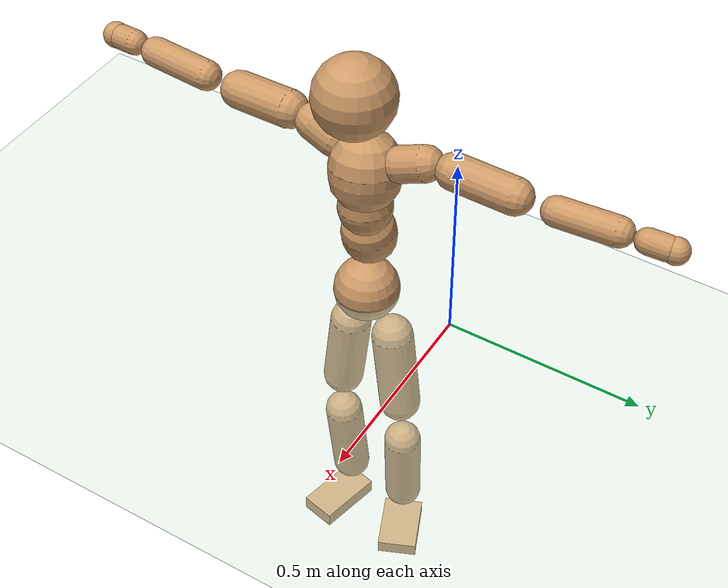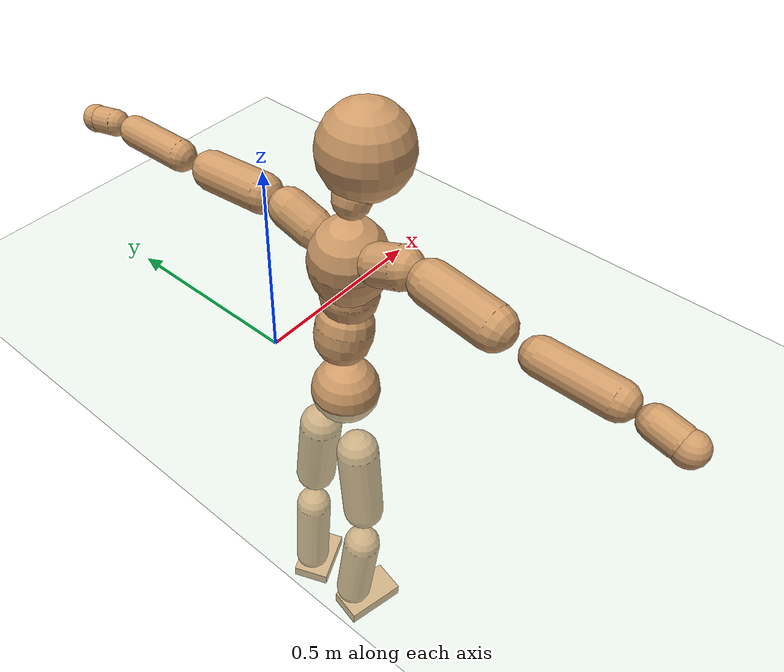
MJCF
<mujoco model="humanoid">
  <compiler coordinate="local" angle="radian"/>
  <default>
    <joint damping="0.0" armature="0.01" stiffness="0.0" limited="true"/>
    <geom conaffinity="1" condim="3" contype="7" margin="0.001" rgba="0.8 0.6 .4 1"/>
  </default>
  <asset>
    <texture type="skybox" builtin="gradient" rgb1=".4 .5 .6" rgb2="0 0 0" width="100" height="100"/>
    <texture builtin="flat" height="1278" mark="cross" markrgb="1 1 1" name="texgeom" random="0.01" rgb1="0.8 0.6 0.4" rgb2="0.8 0.6 0.4" type="cube" width="127"/>
    <texture builtin="checker" height="100" name="texplane" rgb1="0 0 0" rgb2="0.8 0.8 0.8" type="2d" width="100"/>
    <material name="MatPlane" reflectance="0.5" shininess="1" specular="1" texrepeat="60 60" texture="texplane"/>
    <material name="geom" texture="texgeom" texuniform="true"/>
  </asset>
  <worldbody>
    <light cutoff="100" diffuse="1 1 1" dir="-0 0 -1.3" directional="true" exponent="1" pos="0 0 1.3" specular=".1 .1 .1"/>
    <geom conaffinity="1" condim="3" name="floor" pos="0 0 0" rgba="0.8 0.9 0.8 1" size="100 100 .2" type="plane" material="MatPlane"/>
    <body name="Pelvis" pos="0.0005 -0.2372 0.0041">
      <freejoint name="Pelvis"/>
      <geom type="sphere" contype="1" conaffinity="1" density="500" size="0.0843" pos="0.0000 0.0000 0.0000" name="Pelvis"/>
      <body name="L_Hip" pos="-0.026 0.0517 -0.0807">
        <joint name="L_Hip_x" type="hinge" pos="0 0 0" axis="1 0 0" stiffness="800" damping="80" armature="0.02" range="-180.0000 180.0000"/>
        <joint name="L_Hip_y" type="hinge" pos="0 0 0" axis="0 1 0" stiffness="800" damping="80" armature="0.02" range="-180.0000 180.0000"/>
        <joint name="L_Hip_z" type="hinge" pos="0 0 0" axis="0 0 1" stiffness="800" damping="80" armature="0.02" range="-180.0000 180.0000"/>
        <geom type="capsule" contype="1" conaffinity="1" density="500" fromto="0.0017 0.0093 -0.0785 0.0068 0.0373 -0.3140" size="0.054" name="L_Hip"/>
        <body name="L_Knee" pos="0.0084 0.0466 -0.3925">
          <joint name="L_Knee_x" type="hinge" pos="0 0 0" axis="1 0 0" stiffness="800" damping="80" armature="0.02" range="-180.0000 180.0000"/>
          <joint name="L_Knee_y" type="hinge" pos="0 0 0" axis="0 1 0" stiffness="800" damping="80" armature="0.02" range="-180.0000 180.0000"/>
          <joint name="L_Knee_z" type="hinge" pos="0 0 0" axis="0 0 1" stiffness="800" damping="80" armature="0.02" range="-180.0000 180.0000"/>
          <geom type="capsule" contype="1" conaffinity="1" density="500" fromto="-0.0067 -0.0023 -0.0812 -0.0268 -0.0092 -0.3248" size="0.0497" name="L_Knee"/>
          <body name="L_Ankle" pos="-0.0335 -0.0115 -0.4061">
            <joint name="L_Ankle_x" type="hinge" pos="0 0 0" axis="1 0 0" stiffness="800" damping="80" armature="0.02" range="-180.0000 180.0000"/>
            <joint name="L_Ankle_y" type="hinge" pos="0 0 0" axis="0 1 0" stiffness="800" damping="80" armature="0.02" range="-180.0000 180.0000"/>
            <joint name="L_Ankle_z" type="hinge" pos="0 0 0" axis="0 0 1" stiffness="800" damping="80" armature="0.02" range="-180.0000 180.0000"/>
            <geom type="box" contype="1" conaffinity="1" density="500" pos="0.0578 0.0247 -0.0296" size="0.0795 0.0533 0.0197" quat="0.9796 0.0000 0.0000 0.2009" name="L_Ankle"/>
            <body name="L_Toe" pos="0.1155 0.0495 -0.0592">
              <joint name="L_Toe_x" type="hinge" pos="0 0 0" axis="1 0 0" stiffness="500" damping="50" armature="0.02" range="-180.0000 180.0000"/>
              <joint name="L_Toe_y" type="hinge" pos="0 0 0" axis="0 1 0" stiffness="500" damping="50" armature="0.02" range="-180.0000 180.0000"/>
              <joint name="L_Toe_z" type="hinge" pos="0 0 0" axis="0 0 1" stiffness="500" damping="50" armature="0.02" range="-180.0000 180.0000"/>
              <geom type="box" contype="1" conaffinity="1" density="500" pos="0.0000 0.0000 0.0322" size="0.001 0.0025 0.0011" quat="0.9788 0.0000 0.0000 0.2049" name="L_Toe"/>
            </body>
          </body>
        </body>
      </body>
      <body name="R_Hip" pos="-0.0237 -0.0537 -0.0887">
        <joint name="R_Hip_x" type="hinge" pos="0 0 0" axis="1 0 0" stiffness="800" damping="80" armature="0.02" range="-180.0000 180.0000"/>
        <joint name="R_Hip_y" type="hinge" pos="0 0 0" axis="0 1 0" stiffness="800" damping="80" armature="0.02" range="-180.0000 180.0000"/>
        <joint name="R_Hip_z" type="hinge" pos="0 0 0" axis="0 0 1" stiffness="800" damping="80" armature="0.02" range="-180.0000 180.0000"/>
        <geom type="capsule" contype="1" conaffinity="1" density="500" fromto="-0.0006 -0.0095 -0.0767 -0.0022 -0.0382 -0.3068" size="0.0536" name="R_Hip"/>
        <body name="R_Knee" pos="-0.0028 -0.0477 -0.3835">
          <joint name="R_Knee_x" type="hinge" pos="0 0 0" axis="1 0 0" stiffness="800" damping="80" armature="0.02" range="-180.0000 180.0000"/>
          <joint name="R_Knee_y" type="hinge" pos="0 0 0" axis="0 1 0" stiffness="800" damping="80" armature="0.02" range="-180.0000 180.0000"/>
          <joint name="R_Knee_z" type="hinge" pos="0 0 0" axis="0 0 1" stiffness="800" damping="80" armature="0.02" range="-180.0000 180.0000"/>
          <geom type="capsule" contype="1" conaffinity="1" density="500" fromto="-0.0062 0.0034 -0.0799 -0.0248 0.0136 -0.3197" size="0.0508" name="R_Knee"/>
          <body name="R_Ankle" pos="-0.0311 0.017 -0.3996">
            <joint name="R_Ankle_x" type="hinge" pos="0 0 0" axis="1 0 0" stiffness="800" damping="80" armature="0.02" range="-180.0000 180.0000"/>
            <joint name="R_Ankle_y" type="hinge" pos="0 0 0" axis="0 1 0" stiffness="800" damping="80" armature="0.02" range="-180.0000 180.0000"/>
            <joint name="R_Ankle_z" type="hinge" pos="0 0 0" axis="0 0 1" stiffness="800" damping="80" armature="0.02" range="-180.0000 180.0000"/>
            <geom type="box" contype="1" conaffinity="1" density="500" pos="0.0627 -0.0137 -0.0311" size="0.0878 0.0481 0.0214" quat="0.9942 0.0000 0.0000 -0.1077" name="R_Ankle"/>
            <body name="R_Toe" pos="0.1254 -0.0275 -0.0623">
              <joint name="R_Toe_x" type="hinge" pos="0 0 0" axis="1 0 0" stiffness="500" damping="50" armature="0.02" range="-180.0000 180.0000"/>
              <joint name="R_Toe_y" type="hinge" pos="0 0 0" axis="0 1 0" stiffness="500" damping="50" armature="0.02" range="-180.0000 180.0000"/>
              <joint name="R_Toe_z" type="hinge" pos="0 0 0" axis="0 0 1" stiffness="500" damping="50" armature="0.02" range="-180.0000 180.0000"/>
              <geom type="box" contype="1" conaffinity="1" density="500" pos="0.0000 0.0000 0.0336" size="0.0009 0.0023 0.0012" quat="0.9951 0.0000 0.0000 -0.0986" name="R_Toe"/>
            </body>
          </body>
        </body>
      </body>
      <body name="Torso" pos="-0.0191 0.004 0.1185">
        <joint name="Torso_x" type="hinge" pos="0 0 0" axis="1 0 0" stiffness="1000" damping="100" armature="0.02" range="-180.0000 180.0000"/>
        <joint name="Torso_y" type="hinge" pos="0 0 0" axis="0 1 0" stiffness="1000" damping="100" armature="0.02" range="-180.0000 180.0000"/>
        <joint name="Torso_z" type="hinge" pos="0 0 0" axis="0 0 1" stiffness="1000" damping="100" armature="0.02" range="-180.0000 180.0000"/>
        <geom type="capsule" contype="1" conaffinity="1" density="500" fromto="0.0208 0.0028 0.0843 0.0139 0.0019 0.0562" size="0.0683" name="Torso"/>
        <body name="Spine" pos="0.0347 0.0047 0.1405">
          <joint name="Spine_x" type="hinge" pos="0 0 0" axis="1 0 0" stiffness="1000" damping="100" armature="0.02" range="-180.0000 180.0000"/>
          <joint name="Spine_y" type="hinge" pos="0 0 0" axis="0 1 0" stiffness="1000" damping="100" armature="0.02" range="-180.0000 180.0000"/>
          <joint name="Spine_z" type="hinge" pos="0 0 0" axis="0 0 1" stiffness="1000" damping="100" armature="0.02" range="-180.0000 180.0000"/>
          <geom type="capsule" contype="1" conaffinity="1" density="500" fromto="0.0003 -0.0017 0.0341 0.0002 -0.0011 0.0227" size="0.0672" name="Spine"/>
          <body name="Chest" pos="0.0004 -0.0028 0.0568">
            <joint name="Chest_x" type="hinge" pos="0 0 0" axis="1 0 0" stiffness="1000" damping="100" armature="0.02" range="-180.0000 180.0000"/>
            <joint name="Chest_y" type="hinge" pos="0 0 0" axis="0 1 0" stiffness="1000" damping="100" armature="0.02" range="-180.0000 180.0000"/>
            <joint name="Chest_z" type="hinge" pos="0 0 0" axis="0 0 1" stiffness="1000" damping="100" armature="0.02" range="-180.0000 180.0000"/>
            <geom type="capsule" contype="1" conaffinity="1" density="500" fromto="-0.0139 -0.0055 0.0841 -0.0093 -0.0036 0.0561" size="0.0881" name="Chest"/>
            <body name="Neck" pos="-0.0242 -0.0134 0.2056">
              <joint name="Neck_x" type="hinge" pos="0 0 0" axis="1 0 0" stiffness="500" damping="50" armature="0.02" range="-180.0000 180.0000"/>
              <joint name="Neck_y" type="hinge" pos="0 0 0" axis="0 1 0" stiffness="500" damping="50" armature="0.02" range="-180.0000 180.0000"/>
              <joint name="Neck_z" type="hinge" pos="0 0 0" axis="0 0 1" stiffness="500" damping="50" armature="0.02" range="-180.0000 180.0000"/>
              <geom type="capsule" contype="1" conaffinity="1" density="500" fromto="0.0110 0.0016 0.0205 0.0438 0.0064 0.0820" size="0.0414" name="Neck"/>
              <body name="Head" pos="0.0548 0.008 0.1025">
                <joint name="Head_x" type="hinge" pos="0 0 0" axis="1 0 0" stiffness="500" damping="50" armature="0.02" range="-180.0000 180.0000"/>
                <joint name="Head_y" type="hinge" pos="0 0 0" axis="0 1 0" stiffness="500" damping="50" armature="0.02" range="-180.0000 180.0000"/>
                <joint name="Head_z" type="hinge" pos="0 0 0" axis="0 0 1" stiffness="500" damping="50" armature="0.02" range="-180.0000 180.0000"/>
                <geom type="sphere" contype="1" conaffinity="1" density="500" size="0.0992" pos="0.0000 0.0000 0.0000" name="Head"/>
              </body>
            </body>
            <body name="L_Thorax" pos="-0.022 0.0597 0.107">
              <joint name="L_Thorax_x" type="hinge" pos="0 0 0" axis="1 0 0" stiffness="500" damping="50" armature="0.02" range="-180.0000 180.0000"/>
              <joint name="L_Thorax_y" type="hinge" pos="0 0 0" axis="0 1 0" stiffness="500" damping="50" armature="0.02" range="-180.0000 180.0000"/>
              <joint name="L_Thorax_z" type="hinge" pos="0 0 0" axis="0 0 1" stiffness="500" damping="50" armature="0.02" range="-180.0000 180.0000"/>
              <geom type="capsule" contype="1" conaffinity="1" density="500" fromto="-0.0022 0.0207 0.0082 -0.0089 0.0828 0.0329" size="0.0442" name="L_Thorax"/>
              <body name="L_Shoulder" pos="-0.0111 0.1034 0.0411">
                <joint name="L_Shoulder_x" type="hinge" pos="0 0 0" axis="1 0 0" stiffness="500" damping="50" armature="0.02" range="-720.0000 720.0000"/>
                <joint name="L_Shoulder_y" type="hinge" pos="0 0 0" axis="0 1 0" stiffness="500" damping="50" armature="0.02" range="-720.0000 720.0000"/>
                <joint name="L_Shoulder_z" type="hinge" pos="0 0 0" axis="0 0 1" stiffness="500" damping="50" armature="0.02" range="-720.0000 720.0000"/>
                <geom type="capsule" contype="1" conaffinity="1" density="500" fromto="-0.0021 0.0501 -0.0029 -0.0082 0.2004 -0.0116" size="0.0446" name="L_Shoulder"/>
                <body name="L_Elbow" pos="-0.0103 0.2505 -0.0144">
                  <joint name="L_Elbow_x" type="hinge" pos="0 0 0" axis="1 0 0" stiffness="500" damping="50" armature="0.02" range="-720.0000 720.0000"/>
                  <joint name="L_Elbow_y" type="hinge" pos="0 0 0" axis="0 1 0" stiffness="500" damping="50" armature="0.02" range="-720.0000 720.0000"/>
                  <joint name="L_Elbow_z" type="hinge" pos="0 0 0" axis="0 0 1" stiffness="500" damping="50" armature="0.02" range="-720.0000 720.0000"/>
                  <geom type="capsule" contype="1" conaffinity="1" density="500" fromto="-0.0026 0.0485 0.0014 -0.0103 0.1941 0.0055" size="0.036" name="L_Elbow"/>
                  <body name="L_Wrist" pos="-0.0129 0.2426 0.0069">
                    <joint name="L_Wrist_x" type="hinge" pos="0 0 0" axis="1 0 0" stiffness="300" damping="30" armature="0.02" range="-180.0000 180.0000"/>
                    <joint name="L_Wrist_y" type="hinge" pos="0 0 0" axis="0 1 0" stiffness="300" damping="30" armature="0.02" range="-180.0000 180.0000"/>
                    <joint name="L_Wrist_z" type="hinge" pos="0 0 0" axis="0 0 1" stiffness="300" damping="30" armature="0.02" range="-180.0000 180.0000"/>
                    <geom type="capsule" contype="1" conaffinity="1" density="500" fromto="-0.0028 0.0155 -0.0018 -0.0112 0.0620 -0.0074" size="0.0304" name="L_Wrist"/>
                    <body name="L_Hand" pos="-0.014 0.0775 -0.0092">
                      <joint name="L_Hand_x" type="hinge" pos="0 0 0" axis="1 0 0" stiffness="300" damping="30" armature="0.02" range="-180.0000 180.0000"/>
                      <joint name="L_Hand_y" type="hinge" pos="0 0 0" axis="0 1 0" stiffness="300" damping="30" armature="0.02" range="-180.0000 180.0000"/>
                      <joint name="L_Hand_z" type="hinge" pos="0 0 0" axis="0 0 1" stiffness="300" damping="30" armature="0.02" range="-180.0000 180.0000"/>
                      <geom type="sphere" contype="1" conaffinity="1" density="500" size="0.0318" pos="0.0000 0.0000 0.0000" name="L_Hand"/>
                    </body>
                  </body>
                </body>
              </body>
            </body>
            <body name="R_Thorax" pos="-0.0235 -0.0736 0.1079">
              <joint name="R_Thorax_x" type="hinge" pos="0 0 0" axis="1 0 0" stiffness="500" damping="50" armature="0.02" range="-180.0000 180.0000"/>
              <joint name="R_Thorax_y" type="hinge" pos="0 0 0" axis="0 1 0" stiffness="500" damping="50" armature="0.02" range="-180.0000 180.0000"/>
              <joint name="R_Thorax_z" type="hinge" pos="0 0 0" axis="0 0 1" stiffness="500" damping="50" armature="0.02" range="-180.0000 180.0000"/>
              <geom type="capsule" contype="1" conaffinity="1" density="500" fromto="-0.0004 -0.0196 0.0084 -0.0015 -0.0783 0.0335" size="0.0456" name="R_Thorax"/>
              <body name="R_Shoulder" pos="-0.0018 -0.0978 0.0419">
                <joint name="R_Shoulder_x" type="hinge" pos="0 0 0" axis="1 0 0" stiffness="500" damping="50" armature="0.02" range="-720.0000 720.0000"/>
                <joint name="R_Shoulder_y" type="hinge" pos="0 0 0" axis="0 1 0" stiffness="500" damping="50" armature="0.02" range="-720.0000 720.0000"/>
                <joint name="R_Shoulder_z" type="hinge" pos="0 0 0" axis="0 0 1" stiffness="500" damping="50" armature="0.02" range="-720.0000 720.0000"/>
                <geom type="capsule" contype="1" conaffinity="1" density="500" fromto="-0.0034 -0.0498 -0.0035 -0.0136 -0.1992 -0.0139" size="0.0469" name="R_Shoulder"/>
                <body name="R_Elbow" pos="-0.017 -0.249 -0.0174">
                  <joint name="R_Elbow_x" type="hinge" pos="0 0 0" axis="1 0 0" stiffness="500" damping="50" armature="0.02" range="-720.0000 720.0000"/>
                  <joint name="R_Elbow_y" type="hinge" pos="0 0 0" axis="0 1 0" stiffness="500" damping="50" armature="0.02" range="-720.0000 720.0000"/>
                  <joint name="R_Elbow_z" type="hinge" pos="0 0 0" axis="0 0 1" stiffness="500" damping="50" armature="0.02" range="-720.0000 720.0000"/>
                  <geom type="capsule" contype="1" conaffinity="1" density="500" fromto="-0.0018 -0.0511 0.0021 -0.0073 -0.2044 0.0084" size="0.0377" name="R_Elbow"/>
                  <body name="R_Wrist" pos="-0.0091 -0.2555 0.0105">
                    <joint name="R_Wrist_x" type="hinge" pos="0 0 0" axis="1 0 0" stiffness="300" damping="30" armature="0.02" range="-180.0000 180.0000"/>
                    <joint name="R_Wrist_y" type="hinge" pos="0 0 0" axis="0 1 0" stiffness="300" damping="30" armature="0.02" range="-180.0000 180.0000"/>
                    <joint name="R_Wrist_z" type="hinge" pos="0 0 0" axis="0 0 1" stiffness="300" damping="30" armature="0.02" range="-180.0000 180.0000"/>
                    <geom type="capsule" contype="1" conaffinity="1" density="500" fromto="-0.0018 -0.0162 -0.0015 -0.0073 -0.0649 -0.0059" size="0.0317" name="R_Wrist"/>
                    <body name="R_Hand" pos="-0.0091 -0.0811 -0.0074">
                      <joint name="R_Hand_x" type="hinge" pos="0 0 0" axis="1 0 0" stiffness="300" damping="30" armature="0.02" range="-180.0000 180.0000"/>
                      <joint name="R_Hand_y" type="hinge" pos="0 0 0" axis="0 1 0" stiffness="300" damping="30" armature="0.02" range="-180.0000 180.0000"/>
                      <joint name="R_Hand_z" type="hinge" pos="0 0 0" axis="0 0 1" stiffness="300" damping="30" armature="0.02" range="-180.0000 180.0000"/>
                      <geom type="sphere" contype="1" conaffinity="1" density="500" size="0.0330" pos="0.0000 0.0000 0.0000" name="R_Hand"/>
                    </body>
                  </body>
                </body>
              </body>
            </body>
          </body>
        </body>
      </body>
    </body>
  </worldbody>
  <actuator>
    <motor name="L_Hip_x" joint="L_Hip_x" gear="500"/>
    <motor name="L_Hip_y" joint="L_Hip_y" gear="500"/>
    <motor name="L_Hip_z" joint="L_Hip_z" gear="500"/>
    <motor name="L_Knee_x" joint="L_Knee_x" gear="500"/>
    <motor name="L_Knee_y" joint="L_Knee_y" gear="500"/>
    <motor name="L_Knee_z" joint="L_Knee_z" gear="500"/>
    <motor name="L_Ankle_x" joint="L_Ankle_x" gear="500"/>
    <motor name="L_Ankle_y" joint="L_Ankle_y" gear="500"/>
    <motor name="L_Ankle_z" joint="L_Ankle_z" gear="500"/>
    <motor name="L_Toe_x" joint="L_Toe_x" gear="500"/>
    <motor name="L_Toe_y" joint="L_Toe_y" gear="500"/>
    <motor name="L_Toe_z" joint="L_Toe_z" gear="500"/>
    <motor name="R_Hip_x" joint="R_Hip_x" gear="500"/>
    <motor name="R_Hip_y" joint="R_Hip_y" gear="500"/>
    <motor name="R_Hip_z" joint="R_Hip_z" gear="500"/>
    <motor name="R_Knee_x" joint="R_Knee_x" gear="500"/>
    <motor name="R_Knee_y" joint="R_Knee_y" gear="500"/>
    <motor name="R_Knee_z" joint="R_Knee_z" gear="500"/>
    <motor name="R_Ankle_x" joint="R_Ankle_x" gear="500"/>
    <motor name="R_Ankle_y" joint="R_Ankle_y" gear="500"/>
    <motor name="R_Ankle_z" joint="R_Ankle_z" gear="500"/>
    <motor name="R_Toe_x" joint="R_Toe_x" gear="500"/>
    <motor name="R_Toe_y" joint="R_Toe_y" gear="500"/>
    <motor name="R_Toe_z" joint="R_Toe_z" gear="500"/>
    <motor name="Torso_x" joint="Torso_x" gear="500"/>
    <motor name="Torso_y" joint="Torso_y" gear="500"/>
    <motor name="Torso_z" joint="Torso_z" gear="500"/>
    <motor name="Spine_x" joint="Spine_x" gear="500"/>
    <motor name="Spine_y" joint="Spine_y" gear="500"/>
    <motor name="Spine_z" joint="Spine_z" gear="500"/>
    <motor name="Chest_x" joint="Chest_x" gear="500"/>
    <motor name="Chest_y" joint="Chest_y" gear="500"/>
    <motor name="Chest_z" joint="Chest_z" gear="500"/>
    <motor name="Neck_x" joint="Neck_x" gear="500"/>
    <motor name="Neck_y" joint="Neck_y" gear="500"/>
    <motor name="Neck_z" joint="Neck_z" gear="500"/>
    <motor name="Head_x" joint="Head_x" gear="500"/>
    <motor name="Head_y" joint="Head_y" gear="500"/>
    <motor name="Head_z" joint="Head_z" gear="500"/>
    <motor name="L_Thorax_x" joint="L_Thorax_x" gear="500"/>
    <motor name="L_Thorax_y" joint="L_Thorax_y" gear="500"/>
    <motor name="L_Thorax_z" joint="L_Thorax_z" gear="500"/>
    <motor name="L_Shoulder_x" joint="L_Shoulder_x" gear="500"/>
    <motor name="L_Shoulder_y" joint="L_Shoulder_y" gear="500"/>
    <motor name="L_Shoulder_z" joint="L_Shoulder_z" gear="500"/>
    <motor name="L_Elbow_x" joint="L_Elbow_x" gear="500"/>
    <motor name="L_Elbow_y" joint="L_Elbow_y" gear="500"/>
    <motor name="L_Elbow_z" joint="L_Elbow_z" gear="500"/>
    <motor name="L_Wrist_x" joint="L_Wrist_x" gear="500"/>
    <motor name="L_Wrist_y" joint="L_Wrist_y" gear="500"/>
    <motor name="L_Wrist_z" joint="L_Wrist_z" gear="500"/>
    <motor name="L_Hand_x" joint="L_Hand_x" gear="500"/>
    <motor name="L_Hand_y" joint="L_Hand_y" gear="500"/>
    <motor name="L_Hand_z" joint="L_Hand_z" gear="500"/>
    <motor name="R_Thorax_x" joint="R_Thorax_x" gear="500"/>
    <motor name="R_Thorax_y" joint="R_Thorax_y" gear="500"/>
    <motor name="R_Thorax_z" joint="R_Thorax_z" gear="500"/>
    <motor name="R_Shoulder_x" joint="R_Shoulder_x" gear="500"/>
    <motor name="R_Shoulder_y" joint="R_Shoulder_y" gear="500"/>
    <motor name="R_Shoulder_z" joint="R_Shoulder_z" gear="500"/>
    <motor name="R_Elbow_x" joint="R_Elbow_x" gear="500"/>
    <motor name="R_Elbow_y" joint="R_Elbow_y" gear="500"/>
    <motor name="R_Elbow_z" joint="R_Elbow_z" gear="500"/>
    <motor name="R_Wrist_x" joint="R_Wrist_x" gear="500"/>
    <motor name="R_Wrist_y" joint="R_Wrist_y" gear="500"/>
    <motor name="R_Wrist_z" joint="R_Wrist_z" gear="500"/>
    <motor name="R_Hand_x" joint="R_Hand_x" gear="500"/>
    <motor name="R_Hand_y" joint="R_Hand_y" gear="500"/>
    <motor name="R_Hand_z" joint="R_Hand_z" gear="500"/>
  </actuator>
  <contact>
    <exclude body1="Torso" body2="Chest"/>
    <exclude body1="Head" body2="Chest"/>
    <exclude body1="R_Knee" body2="R_Toe"/>
    <exclude body1="R_Knee" body2="L_Ankle"/>
    <exclude body1="R_Knee" body2="L_Toe"/>
    <exclude body1="L_Knee" body2="L_Toe"/>
    <exclude body1="L_Knee" body2="R_Ankle"/>
    <exclude body1="L_Knee" body2="R_Toe"/>
    <exclude body1="L_Shoulder" body2="Chest"/>
    <exclude body1="R_Shoulder" body2="Chest"/>
  </contact>
  <sensor/>
  <size njmax="700" nconmax="700"/>
</mujoco>
